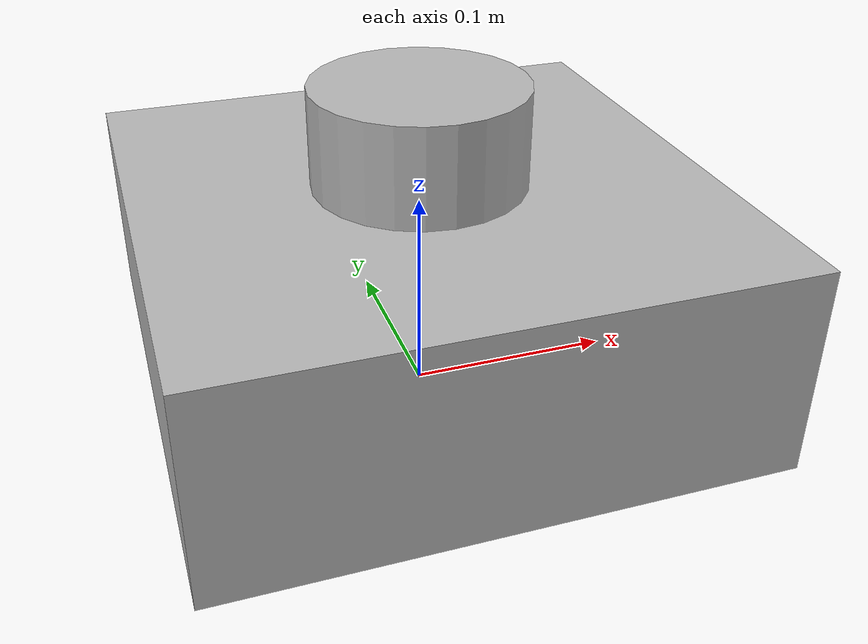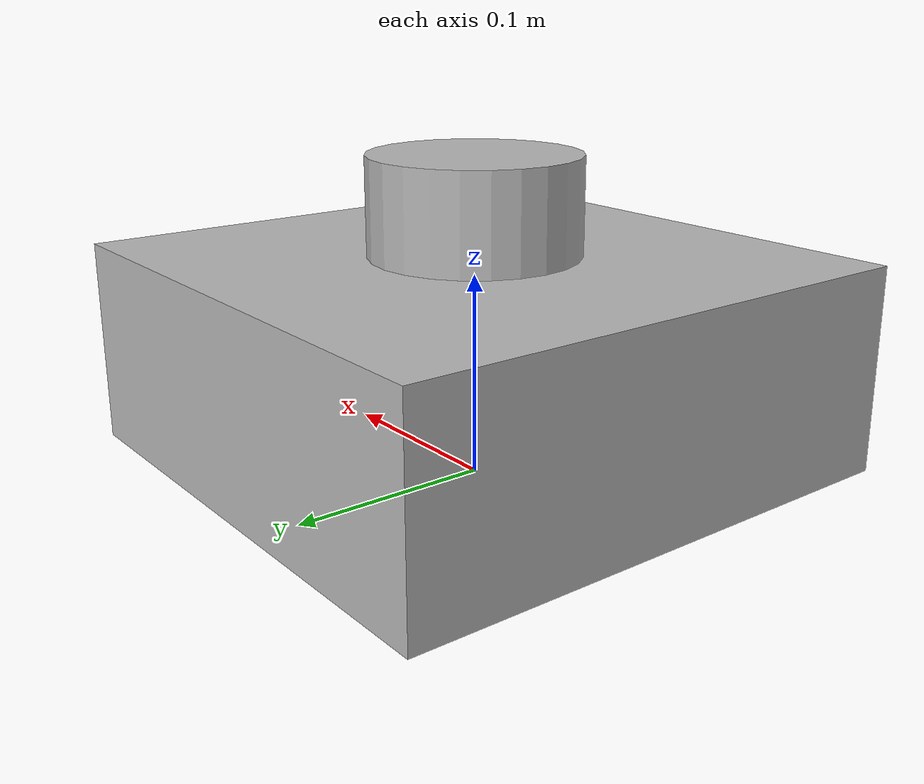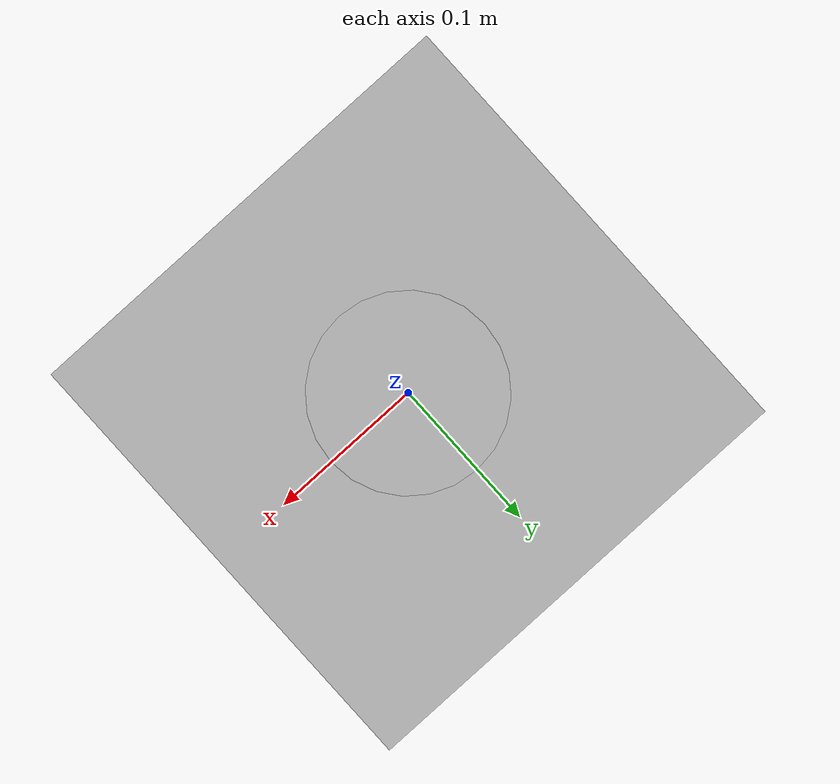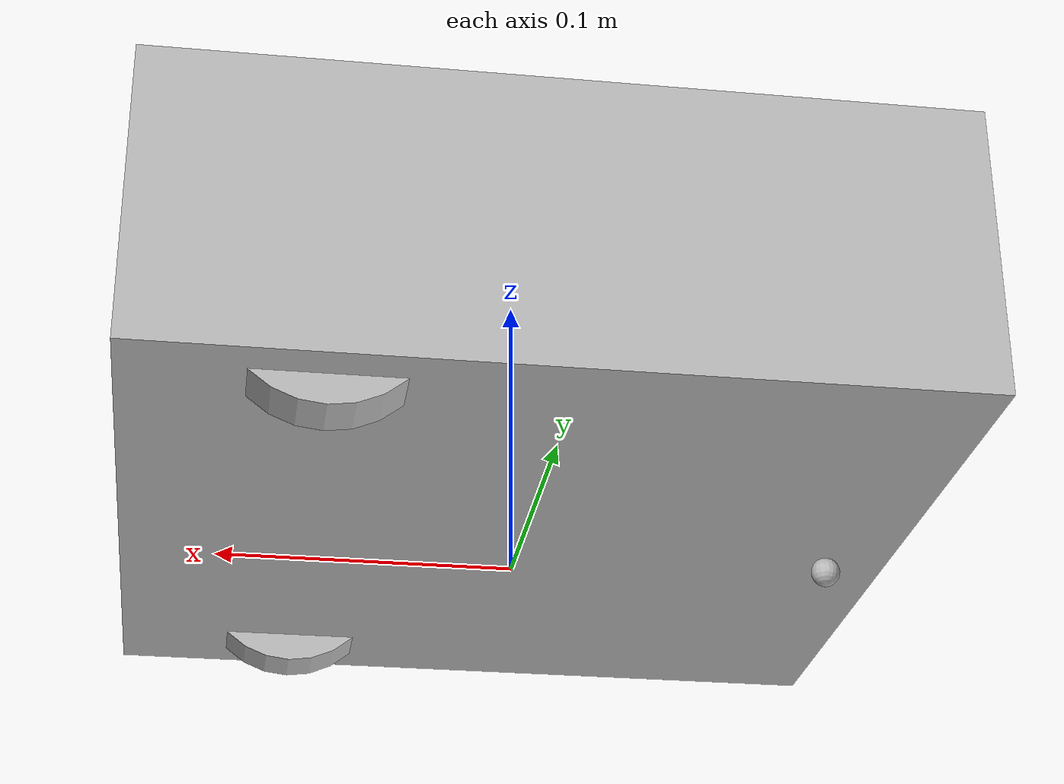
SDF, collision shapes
<?xml version="1.0"?>
<sdf version="1.5">
    <model name="turtlebot3_my_model">
        <!-- Each model link name -->
        <link name="base">
            <!--choose center of mass, inertia, mass -->
            <inertial>
                <!-- center of mass pose -->
                <pose>0 0 0.06 0 0 0</pose>
                <inertia>
                    <ixx>0.001</ixx>
                    <ixy>0.000</ixy>
                    <ixz>0.000</ixz>
                    <iyy>0.001</iyy>
                    <iyz>0.000</iyz>
                    <izz>0.001</izz>
                </inertia>
                <mass>1.0</mass>
            </inertial>

            <!-- Deliver robot base -->
            <collision name="base_collision">
                <pose>0 0 0.06 0 0 0</pose>
                <geometry>
                    <box>
                        <!-- origin standpoint -->
                        <size>0.265 0.265 0.1</size>
                    </box>
                </geometry>
            </collision>

            <visual name="base_visual">
                <pose>0 0 0.06 0 0 0</pose>
                <geometry>
                    <box>
                        <size>0.265 0.265 0.1</size>
                    </box>
                </geometry>
            </visual>

            <collision name="caster_collision">
                <pose>-0.11 0 0.005 0 0 0</pose>
                <geometry>
                    <sphere>
                        <radius>0.005</radius>
                    </sphere>
                </geometry>
                <surface>
                    <friction>
                        <ode>
                            <mu>100000.0</mu>
                            <mu2>100000.0</mu2>
                            <fdir1>0 0 0</fdir1>
                            <slip1>0</slip1>
                            <slip2>0</slip2>
                        </ode>
                    </friction>
                </surface>
            </collision>

            <visual name="caster_visual">
                <pose>-0.11 0 0.005 0 0 0</pose>
                <geometry>
                    <sphere>
                        <radius>0.005000</radius>
                    </sphere>
                </geometry>
            </visual>
        </link>

        <!-- Deliver robot lidar -->
        <link name="lidar">
            <inertial>
                <pose>0 0 0.13 0 0 0</pose>
                <inertia>
                    <ixx>0.001</ixx>
                    <ixy>0.000</ixy>
                    <ixz>0.000</ixz>
                    <iyy>0.001</iyy>
                    <iyz>0.000</iyz>
                    <izz>0.001</izz>
                </inertia>
                <mass>0.125</mass>
            </inertial>

            <collision name="lidar_sensor_collision">
                <pose>0 0 0.13 0 0 0</pose>
                <geometry>
                    <cylinder>
                        <radius>0.0508</radius>
                        <length>0.055</length>
                    </cylinder>
                </geometry>
            </collision>

            <visual name="lidar_sensor_visual">
                <pose>-0.012 0 0.14 0 0 0</pose>
                <geometry>
                    <mesh>
                        <uri>model://turtlebot3_burger/meshes/lds.dae</uri>
                        <scale>0.001 0.001 0.001</scale>
                    </mesh>
                </geometry>
            </visual>

            <sensor name="hls_lfcd_lds" type="ray">
                <always_on>1</always_on>
                <visualize>0</visualize>
                <pose>-0.012 0 0.14 0 0 0</pose>
                <update_rate>1800</update_rate>
                <ray>
                    <scan>
                        <horizontal>
                            <samples>360</samples>
                            <resolution>1.000000</resolution>
                            <min_angle>0.000000</min_angle>
                            <max_angle>6.280000</max_angle>
                        </horizontal>
                    </scan>
                    <range>
                        <min>0.120000</min>
                        <max>3.5</max>
                        <resolution>0.015000</resolution>
                    </range>
                    <noise>
                        <type>gaussian</type>
                        <mean>0.0</mean>
                        <stddev>0.01</stddev>
                    </noise>
                </ray>
            </sensor>
        </link>

        <!-- Deliver robot left wheel -->
        <link name="left_wheel">
            <inertial>
                <pose>0.07 0.11 0.033 -1.57 0 0</pose>
                <inertia>
                <ixx>0.001</ixx>
                <ixy>0.000</ixy>
                <ixz>0.000</ixz>
                <iyy>0.001</iyy>
                <iyz>0.000</iyz>
                <izz>0.001</izz>
                </inertia>
                <mass>0.1</mass>
            </inertial>

            <collision name="left_wheel_collision">
                <pose>0.07 0.11 0.033 -1.57 0 0</pose>
                <geometry>
                    <cylinder>
                        <radius>0.033</radius>
                        <length>0.018</length>
                    </cylinder>
                </geometry>
                <surface>
                    <friction>
                        <ode>
                            <mu>100000.0</mu>
                            <mu2>100000.0</mu2>
                            <fdir1>0 0 0</fdir1>
                            <slip1>0.0</slip1>
                            <slip2>0.0</slip2>
                        </ode>
                    </friction>
                </surface>
            </collision>

            <visual name="left_wheel_visual">
                <pose>0.07 0.11 0.033 -1.57 0 0</pose>
                <geometry>
                    <cylinder>
                        <radius>0.033</radius>
                        <length>0.018</length>
                    </cylinder>
                </geometry>
            </visual>
        </link>

        <!-- Deliver robot right wheel -->
        <link name="right_wheel">
            <inertial>
                <pose>0.07 -0.11 0.033 -1.57 0 0</pose>
                <inertia>
                    <ixx>0.001</ixx>
                    <ixy>0.000</ixy>
                    <ixz>0.000</ixz>
                    <iyy>0.001</iyy>
                    <iyz>0.000</iyz>
                    <izz>0.001</izz>
                </inertia>
                <mass>0.1</mass>
            </inertial>

            <collision name="right_wheel_collision">
                <pose>0.07 -0.11 0.033 -1.57 0 0</pose>
                <geometry>
                    <cylinder>
                        <radius>0.033</radius>
                        <length>0.018</length>
                    </cylinder>
                </geometry>
                <surface>
                    <friction>
                    <ode>
                        <mu>100000.0</mu>
                        <mu2>100000.0</mu2>
                        <fdir1>0 0 0</fdir1>
                        <slip1>0.0</slip1>
                        <slip2>0.0</slip2>
                    </ode>
                </friction>
                </surface>
            </collision>

            <visual name="right_wheel_visual">
                <pose>0.07 -0.11 0.033 -1.57 0 0</pose>
                <geometry>
                     <cylinder>
                        <radius>0.033</radius>
                        <length>0.018</length>
                    </cylinder>
                </geometry>
            </visual>
        </link>

        <!-- link & link connection -->
        <joint name="left_wheel_joint" type="revolute">
            <parent>base</parent>
            <child>left_wheel</child>
            <pose>0.07 0.11 0.033 0 -1.57 0</pose>
            <axis>
                <xyz>0 1 0</xyz>
            </axis>
        </joint>

        <joint name="right_wheel_joint" type="revolute">
            <parent>base</parent>
            <child>right_wheel</child>
            <pose>0.07 -0.11 0.033 0 -1.57 0</pose>
            <axis>
                <xyz>0 1 0</xyz>
            </axis>
        </joint>
        <!-- link & link connection -->
        <joint name="lidar_joint" type="fixed">
            <parent>base</parent>
            <child>lidar</child>
            <pose>-0.012 0 0.13 0 0 0</pose>
            <axis>
                <xyz>0 0 1</xyz>
                <use_parent_model_frame>true</use_parent_model_frame>
            </axis>
        </joint>
    </model>
</sdf>
